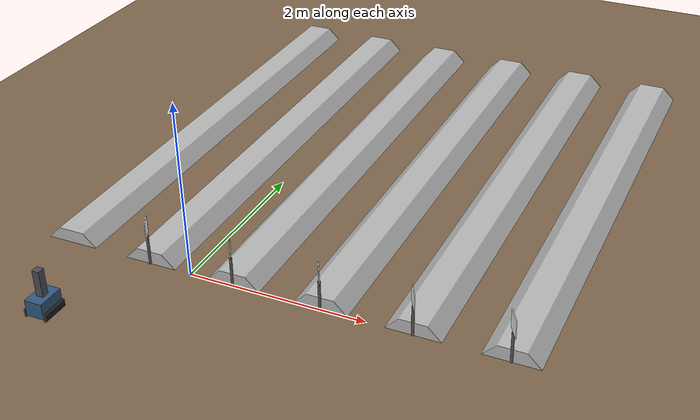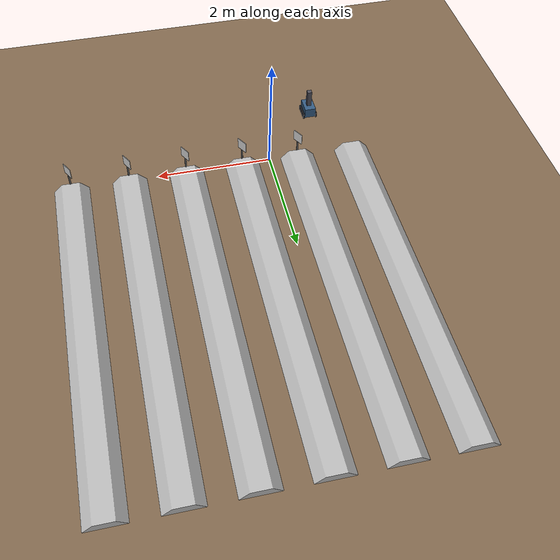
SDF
<?xml version="1.0"?>
<!-- 자동 생성: sim_gazebo/scripts/make_world.py
     측량값 출처 = farm_robot/config.py (두 시뮬이 어긋나지 않게 단일 출처)
       고랑 간격 1.0m / 고랑 반폭 0.2m / 이랑 높이 0.15m
       팻말 20cm, 오프셋 0.3m, 기울기 30.0도 -->
<sdf version="1.10">
  <world name="field">
    <physics name="1ms" type="ignored">
      <max_step_size>0.001</max_step_size>
      <real_time_factor>1.0</real_time_factor>
    </physics>
    <plugin filename="gz-sim-physics-system" name="gz::sim::systems::Physics"/>
    <plugin filename="gz-sim-sensors-system" name="gz::sim::systems::Sensors">
      <render_engine>ogre2</render_engine>
    </plugin>
    <plugin filename="gz-sim-user-commands-system" name="gz::sim::systems::UserCommands"/>
    <plugin filename="gz-sim-scene-broadcaster-system" name="gz::sim::systems::SceneBroadcaster"/>

    <!-- [중요] 조명이 약하면 마커의 '흰 셀'이 어두운 회색으로 렌더돼
         ArUco 가 요구하는 흑백 대비가 나오지 않는다(실제로 검출 0건이었다).
         환경광을 충분히 주고, 팻말 면(-y 방향)을 비추는 보조광을 둔다. -->
    <scene>
      <ambient>0.75 0.75 0.75 1</ambient>
      <background>0.75 0.80 0.88 1</background>
      <shadows>true</shadows>
    </scene>

    <light type="directional" name="sun">
      <cast_shadows>true</cast_shadows>
      <pose>0 0 10 0 0 0</pose>
      <diffuse>0.8 0.8 0.8 1</diffuse>
      <specular>0.1 0.1 0.1 1</specular>
      <direction>-0.3 0.4 -0.9</direction>
    </light>
    <!-- 팻말 정면(-y)을 비추는 보조광: 마커 대비 확보용 -->
    <light type="directional" name="fill_front">
      <cast_shadows>false</cast_shadows>
      <pose>0 -20 8 0 0 0</pose>
      <diffuse>0.6 0.6 0.6 1</diffuse>
      <direction>0 1 -0.35</direction>
    </light>

    <model name="ground">
      <static>true</static>
      <link name="l">
        <collision name="c"><geometry><plane><normal>0 0 1</normal>
          <size>200 200</size></plane></geometry></collision>
        <visual name="v"><geometry><plane><normal>0 0 1</normal>
          <size>200 200</size></plane></geometry>
          <material><ambient>0.4 0.32 0.24 1</ambient><diffuse>0.5 0.4 0.3 1</diffuse></material>
        </visual>
      </link>
    </model>

    <model name="ridges">
      <static>true</static>
      <link name="ridge_-1">
        <pose>-1.5 0 0 0 0 0</pose>
        <collision name="c">
          <geometry><mesh><uri>/sim/models/ridge/ridge.obj</uri></mesh></geometry>
          <surface><friction><ode><mu>1.0</mu><mu2>0.9</mu2></ode></friction></surface>
        </collision>
        <visual name="v">
          <geometry><mesh><uri>/sim/models/ridge/ridge.obj</uri></mesh></geometry>
        </visual>
      </link>
      <link name="ridge_0">
        <pose>-0.5 0 0 0 0 0</pose>
        <collision name="c">
          <geometry><mesh><uri>/sim/models/ridge/ridge.obj</uri></mesh></geometry>
          <surface><friction><ode><mu>1.0</mu><mu2>0.9</mu2></ode></friction></surface>
        </collision>
        <visual name="v">
          <geometry><mesh><uri>/sim/models/ridge/ridge.obj</uri></mesh></geometry>
        </visual>
      </link>
      <link name="ridge_1">
        <pose>0.5 0 0 0 0 0</pose>
        <collision name="c">
          <geometry><mesh><uri>/sim/models/ridge/ridge.obj</uri></mesh></geometry>
          <surface><friction><ode><mu>1.0</mu><mu2>0.9</mu2></ode></friction></surface>
        </collision>
        <visual name="v">
          <geometry><mesh><uri>/sim/models/ridge/ridge.obj</uri></mesh></geometry>
        </visual>
      </link>
      <link name="ridge_2">
        <pose>1.5 0 0 0 0 0</pose>
        <collision name="c">
          <geometry><mesh><uri>/sim/models/ridge/ridge.obj</uri></mesh></geometry>
          <surface><friction><ode><mu>1.0</mu><mu2>0.9</mu2></ode></friction></surface>
        </collision>
        <visual name="v">
          <geometry><mesh><uri>/sim/models/ridge/ridge.obj</uri></mesh></geometry>
        </visual>
      </link>
      <link name="ridge_3">
        <pose>2.5 0 0 0 0 0</pose>
        <collision name="c">
          <geometry><mesh><uri>/sim/models/ridge/ridge.obj</uri></mesh></geometry>
          <surface><friction><ode><mu>1.0</mu><mu2>0.9</mu2></ode></friction></surface>
        </collision>
        <visual name="v">
          <geometry><mesh><uri>/sim/models/ridge/ridge.obj</uri></mesh></geometry>
        </visual>
      </link>
      <link name="ridge_4">
        <pose>3.5 0 0 0 0 0</pose>
        <collision name="c">
          <geometry><mesh><uri>/sim/models/ridge/ridge.obj</uri></mesh></geometry>
          <surface><friction><ode><mu>1.0</mu><mu2>0.9</mu2></ode></friction></surface>
        </collision>
        <visual name="v">
          <geometry><mesh><uri>/sim/models/ridge/ridge.obj</uri></mesh></geometry>
        </visual>
      </link>
    </model>

    <model name="post_0">
      <static>true</static>
      <link name="pole">
        <pose>-0.500 0.000 0.175 0 0 0</pose>
        <collision name="c"><geometry><cylinder><radius>0.015</radius>
          <length>0.350</length></cylinder></geometry></collision>
        <visual name="v"><geometry><cylinder><radius>0.015</radius>
          <length>0.350</length></cylinder></geometry>
          <material><ambient>0.25 0.25 0.25 1</ambient>
            <diffuse>0.35 0.35 0.35 1</diffuse></material></visual>
      </link>
      <link name="plate">
        <pose>-0.500 0.000 0.450 0 0 -1.0472</pose>
        <collision name="c"><geometry><box><size>0.200 0.008 0.200</size></box></geometry></collision>
        <visual name="v">
          <geometry><box><size>0.200 0.008 0.200</size></box></geometry>
          <material>
            <ambient>1 1 1 1</ambient>
            <diffuse>1 1 1 1</diffuse>
            <specular>0 0 0 1</specular>
            <pbr><metal>
              <albedo_map>/sim/models/markers/aruco_0.png</albedo_map>
              <metalness>0.0</metalness>
              <roughness>1.0</roughness>
            </metal></pbr>
          </material>
        </visual>
      </link>
    </model>
    <model name="post_1">
      <static>true</static>
      <link name="pole">
        <pose>0.500 0.000 0.175 0 0 0</pose>
        <collision name="c"><geometry><cylinder><radius>0.015</radius>
          <length>0.350</length></cylinder></geometry></collision>
        <visual name="v"><geometry><cylinder><radius>0.015</radius>
          <length>0.350</length></cylinder></geometry>
          <material><ambient>0.25 0.25 0.25 1</ambient>
            <diffuse>0.35 0.35 0.35 1</diffuse></material></visual>
      </link>
      <link name="plate">
        <pose>0.500 0.000 0.450 0 0 -1.0472</pose>
        <collision name="c"><geometry><box><size>0.200 0.008 0.200</size></box></geometry></collision>
        <visual name="v">
          <geometry><box><size>0.200 0.008 0.200</size></box></geometry>
          <material>
            <ambient>1 1 1 1</ambient>
            <diffuse>1 1 1 1</diffuse>
            <specular>0 0 0 1</specular>
            <pbr><metal>
              <albedo_map>/sim/models/markers/aruco_1.png</albedo_map>
              <metalness>0.0</metalness>
              <roughness>1.0</roughness>
            </metal></pbr>
          </material>
        </visual>
      </link>
    </model>
    <model name="post_2">
      <static>true</static>
      <link name="pole">
        <pose>1.500 0.000 0.175 0 0 0</pose>
        <collision name="c"><geometry><cylinder><radius>0.015</radius>
          <length>0.350</length></cylinder></geometry></collision>
        <visual name="v"><geometry><cylinder><radius>0.015</radius>
          <length>0.350</length></cylinder></geometry>
          <material><ambient>0.25 0.25 0.25 1</ambient>
            <diffuse>0.35 0.35 0.35 1</diffuse></material></visual>
      </link>
      <link name="plate">
        <pose>1.500 0.000 0.450 0 0 -1.0472</pose>
        <collision name="c"><geometry><box><size>0.200 0.008 0.200</size></box></geometry></collision>
        <visual name="v">
          <geometry><box><size>0.200 0.008 0.200</size></box></geometry>
          <material>
            <ambient>1 1 1 1</ambient>
            <diffuse>1 1 1 1</diffuse>
            <specular>0 0 0 1</specular>
            <pbr><metal>
              <albedo_map>/sim/models/markers/aruco_2.png</albedo_map>
              <metalness>0.0</metalness>
              <roughness>1.0</roughness>
            </metal></pbr>
          </material>
        </visual>
      </link>
    </model>
    <model name="post_3">
      <static>true</static>
      <link name="pole">
        <pose>2.500 0.000 0.175 0 0 0</pose>
        <collision name="c"><geometry><cylinder><radius>0.015</radius>
          <length>0.350</length></cylinder></geometry></collision>
        <visual name="v"><geometry><cylinder><radius>0.015</radius>
          <length>0.350</length></cylinder></geometry>
          <material><ambient>0.25 0.25 0.25 1</ambient>
            <diffuse>0.35 0.35 0.35 1</diffuse></material></visual>
      </link>
      <link name="plate">
        <pose>2.500 0.000 0.450 0 0 -1.0472</pose>
        <collision name="c"><geometry><box><size>0.200 0.008 0.200</size></box></geometry></collision>
        <visual name="v">
          <geometry><box><size>0.200 0.008 0.200</size></box></geometry>
          <material>
            <ambient>1 1 1 1</ambient>
            <diffuse>1 1 1 1</diffuse>
            <specular>0 0 0 1</specular>
            <pbr><metal>
              <albedo_map>/sim/models/markers/aruco_3.png</albedo_map>
              <metalness>0.0</metalness>
              <roughness>1.0</roughness>
            </metal></pbr>
          </material>
        </visual>
      </link>
    </model>
    <model name="post_4">
      <static>true</static>
      <link name="pole">
        <pose>3.500 0.000 0.175 0 0 0</pose>
        <collision name="c"><geometry><cylinder><radius>0.015</radius>
          <length>0.350</length></cylinder></geometry></collision>
        <visual name="v"><geometry><cylinder><radius>0.015</radius>
          <length>0.350</length></cylinder></geometry>
          <material><ambient>0.25 0.25 0.25 1</ambient>
            <diffuse>0.35 0.35 0.35 1</diffuse></material></visual>
      </link>
      <link name="plate">
        <pose>3.500 0.000 0.450 0 0 -1.0472</pose>
        <collision name="c"><geometry><box><size>0.200 0.008 0.200</size></box></geometry></collision>
        <visual name="v">
          <geometry><box><size>0.200 0.008 0.200</size></box></geometry>
          <material>
            <ambient>1 1 1 1</ambient>
            <diffuse>1 1 1 1</diffuse>
            <specular>0 0 0 1</specular>
            <pbr><metal>
              <albedo_map>/sim/models/markers/aruco_4.png</albedo_map>
              <metalness>0.0</metalness>
              <roughness>1.0</roughness>
            </metal></pbr>
          </material>
        </visual>
      </link>
    </model>
    <model name="post_249">
      <static>true</static>
      <link name="pole">
        <pose>3.500 0.000 0.175 0 0 0</pose>
        <collision name="c"><geometry><cylinder><radius>0.015</radius>
          <length>0.350</length></cylinder></geometry></collision>
        <visual name="v"><geometry><cylinder><radius>0.015</radius>
          <length>0.350</length></cylinder></geometry>
          <material><ambient>0.25 0.25 0.25 1</ambient>
            <diffuse>0.35 0.35 0.35 1</diffuse></material></visual>
      </link>
      <link name="plate">
        <pose>3.500 0.000 0.450 0 0 -1.0472</pose>
        <collision name="c"><geometry><box><size>0.200 0.008 0.200</size></box></geometry></collision>
        <visual name="v">
          <geometry><box><size>0.200 0.008 0.200</size></box></geometry>
          <material>
            <ambient>1 1 1 1</ambient>
            <diffuse>1 1 1 1</diffuse>
            <specular>0 0 0 1</specular>
            <pbr><metal>
              <albedo_map>/sim/models/markers/aruco_249.png</albedo_map>
              <metalness>0.0</metalness>
              <roughness>1.0</roughness>
            </metal></pbr>
          </material>
        </visual>
      </link>
    </model>

    <!-- AGV: 첫 이랑보다 왼쪽 헤드랜드에서 밭 안쪽(+y)을 바라보고 출발 -->
    <include>
      <uri>/sim/models/agv</uri>
      <name>agv</name>
      <pose>-1.0 -1.1 0 0 0 1.5708</pose>
    </include>
  </world>
</sdf>

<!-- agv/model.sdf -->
<!-- 자동 생성: sim_gazebo/scripts/make_robot.py
     전체 30x20x50cm
     헐 18cm + 마스트 30cm, 카메라 45cm
     ※ 탱크 궤도는 차동구동 근사. 회전 미끄러짐 수치는 신뢰하지 말 것. -->
<sdf version="1.10">
  <model name="agv">
    <link name="base_link">
      <pose>0 0 0.1100 0 0 0</pose>
      <inertial>
        <pose>0 0 -0.02 0 0 0</pose>
        <mass>8.0</mass>
        <inertia><ixx>0.0483</ixx><iyy>0.0816</iyy><izz>0.0867</izz>
          <ixy>0</ixy><ixz>0</ixz><iyz>0</iyz></inertia>
      </inertial>
      <collision name="col_hull">
        <pose>0.000 0.000 0.000 0 0 0</pose>
        <geometry><box><size>0.300 0.200 0.180</size></box></geometry>

      </collision>
      <visual name="vis_hull">
        <pose>0.000 0.000 0.000 0 0 0</pose>
        <geometry><box><size>0.300 0.200 0.180</size></box></geometry>
        <material><ambient>0.20 0.35 0.50 1</ambient><diffuse>0.20 0.35 0.50 1</diffuse></material>
      </visual>
      <collision name="col_track_l">
        <pose>0.000 0.115 -0.070 0 0 0</pose>
        <geometry><box><size>0.300 0.030 0.080</size></box></geometry>
        <surface><friction><ode><mu>0.05</mu><mu2>0.05</mu2></ode></friction></surface>
      </collision>
      <visual name="vis_track_l">
        <pose>0.000 0.115 -0.070 0 0 0</pose>
        <geometry><box><size>0.300 0.030 0.080</size></box></geometry>
        <material><ambient>0.10 0.10 0.12 1</ambient><diffuse>0.10 0.10 0.12 1</diffuse></material>
      </visual>
      <collision name="col_track_r">
        <pose>0.000 -0.115 -0.070 0 0 0</pose>
        <geometry><box><size>0.300 0.030 0.080</size></box></geometry>
        <surface><friction><ode><mu>0.05</mu><mu2>0.05</mu2></ode></friction></surface>
      </collision>
      <visual name="vis_track_r">
        <pose>0.000 -0.115 -0.070 0 0 0</pose>
        <geometry><box><size>0.300 0.030 0.080</size></box></geometry>
        <material><ambient>0.10 0.10 0.12 1</ambient><diffuse>0.10 0.10 0.12 1</diffuse></material>
      </visual>
      <collision name="col_mast">
        <pose>0.000 0.000 0.240 0 0 0</pose>
        <geometry><box><size>0.080 0.080 0.300</size></box></geometry>

      </collision>
      <visual name="vis_mast">
        <pose>0.000 0.000 0.240 0 0 0</pose>
        <geometry><box><size>0.080 0.080 0.300</size></box></geometry>
        <material><ambient>0.30 0.30 0.34 1</ambient><diffuse>0.30 0.30 0.34 1</diffuse></material>
      </visual>

      <sensor name="front_camera" type="camera">
        <pose>0.150 0 0.340 0 0 0</pose>
        <update_rate>20</update_rate><topic>camera</topic>
        <camera>
          <horizontal_fov>1.08210</horizontal_fov>
          <image><width>640</width><height>480</height><format>R8G8B8</format></image>
          <clip><near>0.05</near><far>50</far></clip>
          <distortion><k1>0</k1><k2>0</k2><k3>0</k3><p1>0</p1><p2>0</p2></distortion>
        </camera>
        <always_on>1</always_on>
      </sensor>

      <sensor name="tof_left" type="gpu_lidar">
        <pose>0 0.130 -0.030 0 0 1.5708</pose>
        <update_rate>20</update_rate><topic>tof_left</topic>
        <lidar>
          <scan><horizontal><samples>1</samples>
            <min_angle>0</min_angle><max_angle>0</max_angle></horizontal></scan>
          <range><min>0.02</min><max>0.80</max>
            <resolution>0.001</resolution></range>
        </lidar>
        <always_on>1</always_on>
      </sensor>

      <sensor name="tof_right" type="gpu_lidar">
        <pose>0 -0.130 -0.030 0 0 -1.5708</pose>
        <update_rate>20</update_rate><topic>tof_right</topic>
        <lidar>
          <scan><horizontal><samples>1</samples>
            <min_angle>0</min_angle><max_angle>0</max_angle></horizontal></scan>
          <range><min>0.02</min><max>0.80</max>
            <resolution>0.001</resolution></range>
        </lidar>
        <always_on>1</always_on>
      </sensor>
    </link>

    <link name="wheel_left">
      <pose>0 0.0850 0.0330 1.5708 0 0</pose>
      <inertial><mass>0.4</mass>
        <inertia><ixx>0.001</ixx><iyy>0.001</iyy><izz>0.001</izz>
          <ixy>0</ixy><ixz>0</ixz><iyz>0</iyz></inertia></inertial>
      <collision name="c">
        <geometry><cylinder><radius>0.0330</radius><length>0.05</length></cylinder></geometry>
        <surface><friction><ode><mu>1.2</mu><mu2>1.0</mu2></ode></friction></surface>
      </collision>
      <visual name="v">
        <geometry><cylinder><radius>0.0330</radius><length>0.05</length></cylinder></geometry>
        <material><ambient>0.05 0.05 0.05 1</ambient><diffuse>0.1 0.1 0.1 1</diffuse></material>
      </visual>
    </link>
    <joint name="wheel_left_joint" type="revolute">
      <parent>base_link</parent><child>wheel_left</child>
      <!-- [수정] 바퀴 실린더를 roll +pi/2 로 눕혔으므로 조인트 축은 -y 여야
           전진 명령(linear.x>0)에 실제로 전진한다. +y 로 두면 **후진**한다
           (실측: 전진 명령에 월드 y 가 -1.1 -> -5.49 로 뒤로 갔다). -->
      <axis><xyz>0 -1 0</xyz><limit><lower>-1e16</lower><upper>1e16</upper></limit></axis>
    </joint>

    <link name="wheel_right">
      <pose>0 -0.0850 0.0330 1.5708 0 0</pose>
      <inertial><mass>0.4</mass>
        <inertia><ixx>0.001</ixx><iyy>0.001</iyy><izz>0.001</izz>
          <ixy>0</ixy><ixz>0</ixz><iyz>0</iyz></inertia></inertial>
      <collision name="c">
        <geometry><cylinder><radius>0.0330</radius><length>0.05</length></cylinder></geometry>
        <surface><friction><ode><mu>1.2</mu><mu2>1.0</mu2></ode></friction></surface>
      </collision>
      <visual name="v">
        <geometry><cylinder><radius>0.0330</radius><length>0.05</length></cylinder></geometry>
        <material><ambient>0.05 0.05 0.05 1</ambient><diffuse>0.1 0.1 0.1 1</diffuse></material>
      </visual>
    </link>
    <joint name="wheel_right_joint" type="revolute">
      <parent>base_link</parent><child>wheel_right</child>
      <!-- [수정] 바퀴 실린더를 roll +pi/2 로 눕혔으므로 조인트 축은 -y 여야
           전진 명령(linear.x>0)에 실제로 전진한다. +y 로 두면 **후진**한다
           (실측: 전진 명령에 월드 y 가 -1.1 -> -5.49 로 뒤로 갔다). -->
      <axis><xyz>0 -1 0</xyz><limit><lower>-1e16</lower><upper>1e16</upper></limit></axis>
    </joint>

    <plugin filename="gz-sim-diff-drive-system" name="gz::sim::systems::DiffDrive">
      <left_joint>wheel_left_joint</left_joint>
      <right_joint>wheel_right_joint</right_joint>
      <wheel_separation>0.17</wheel_separation>
      <wheel_radius>0.033</wheel_radius>
      <topic>cmd_vel</topic>
      <odom_topic>odom</odom_topic>
      <frame_id>odom</frame_id><child_frame_id>base_link</child_frame_id>
    </plugin>
  </model>
</sdf>
